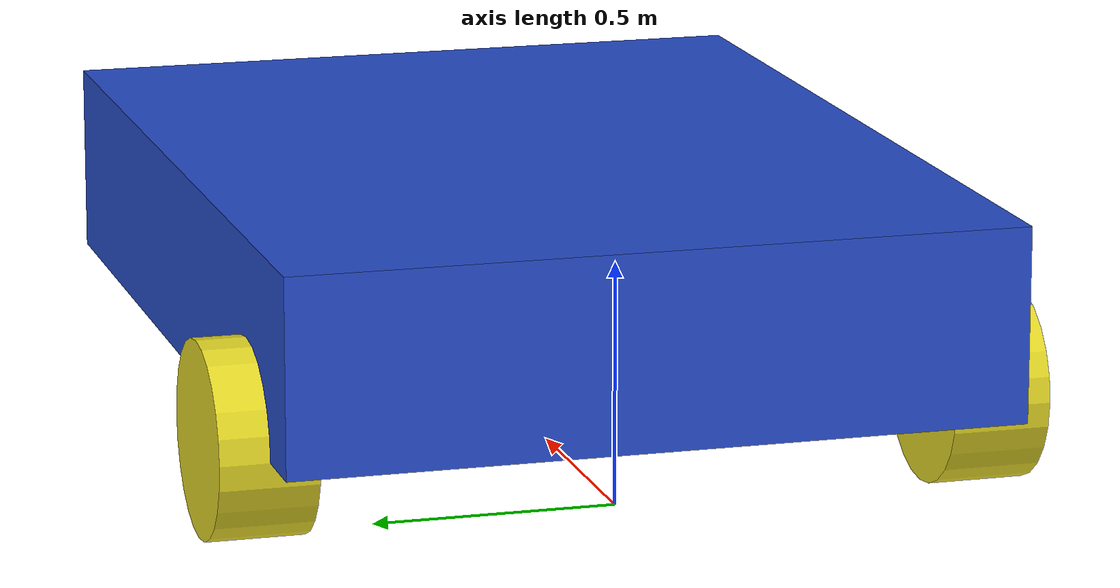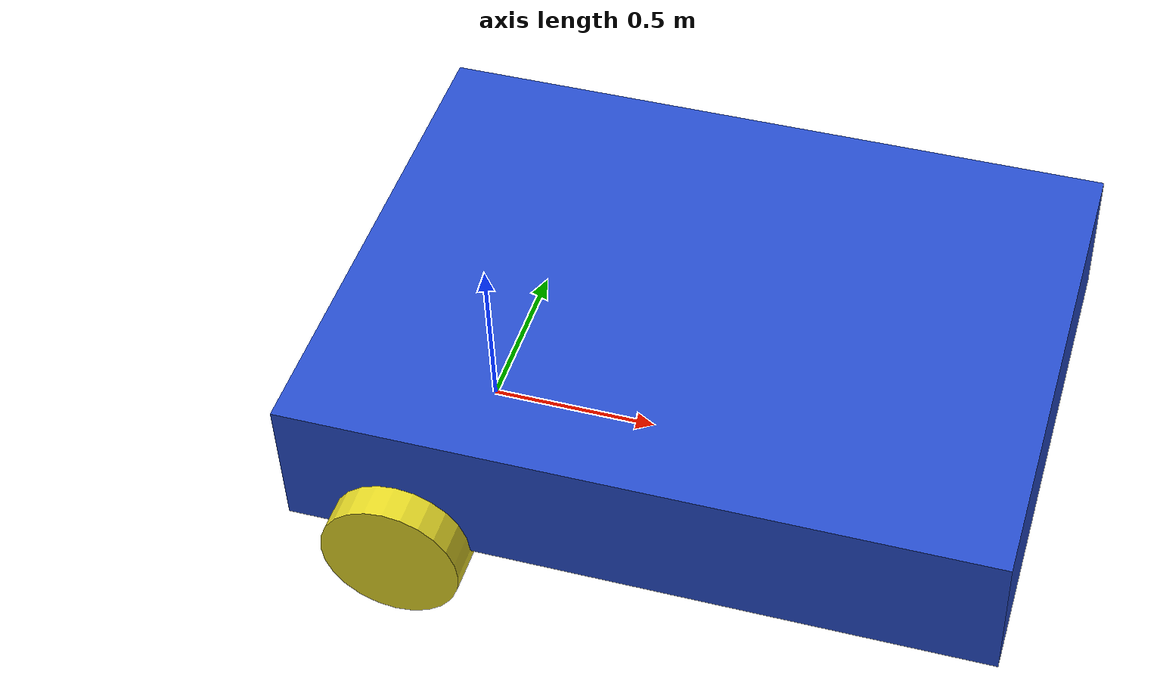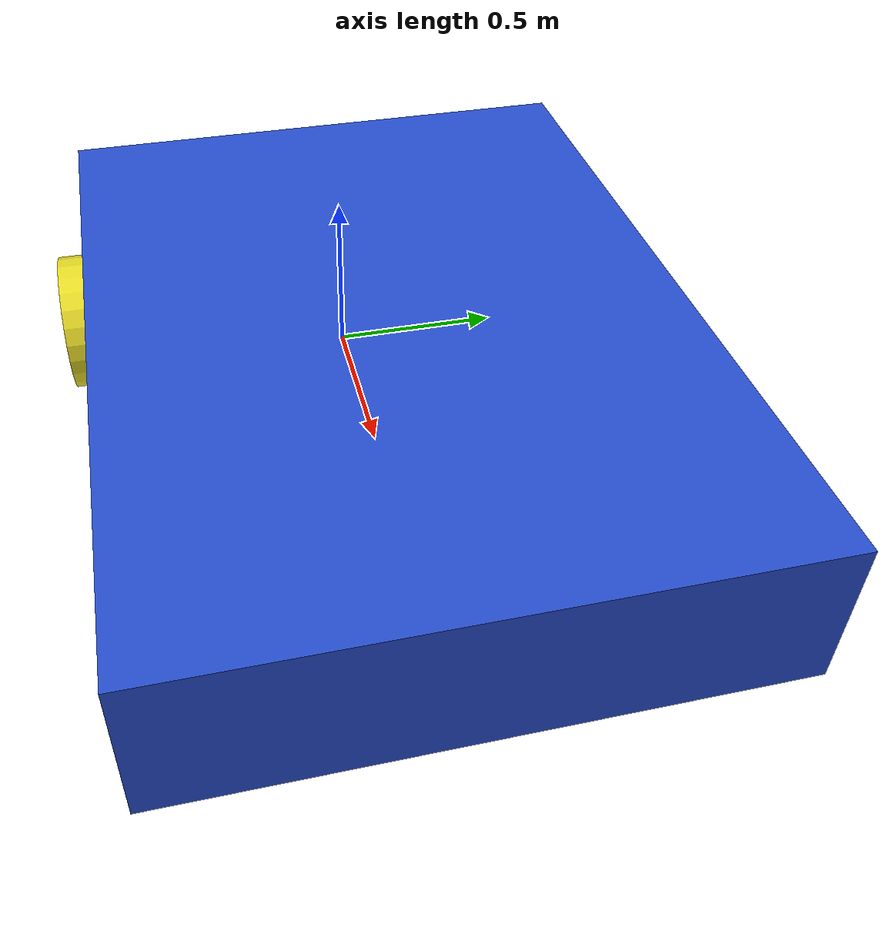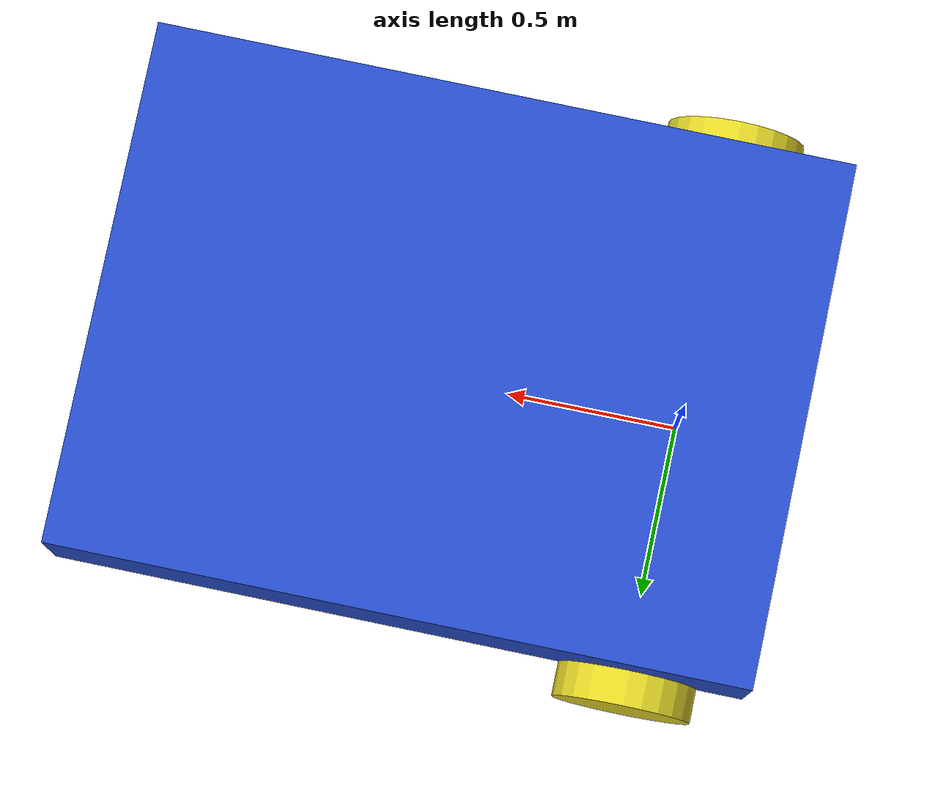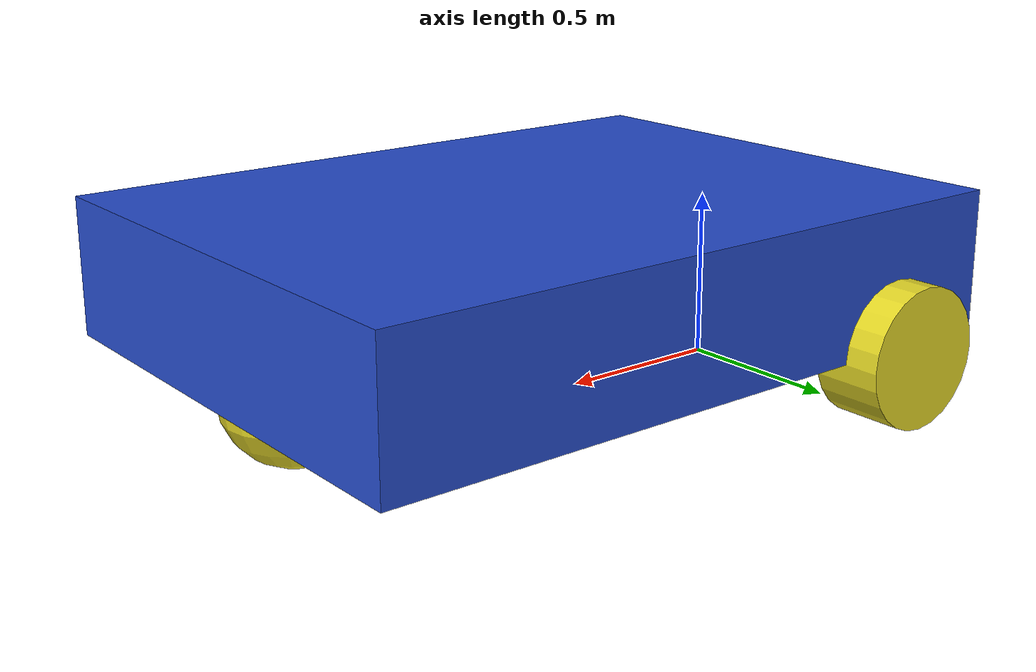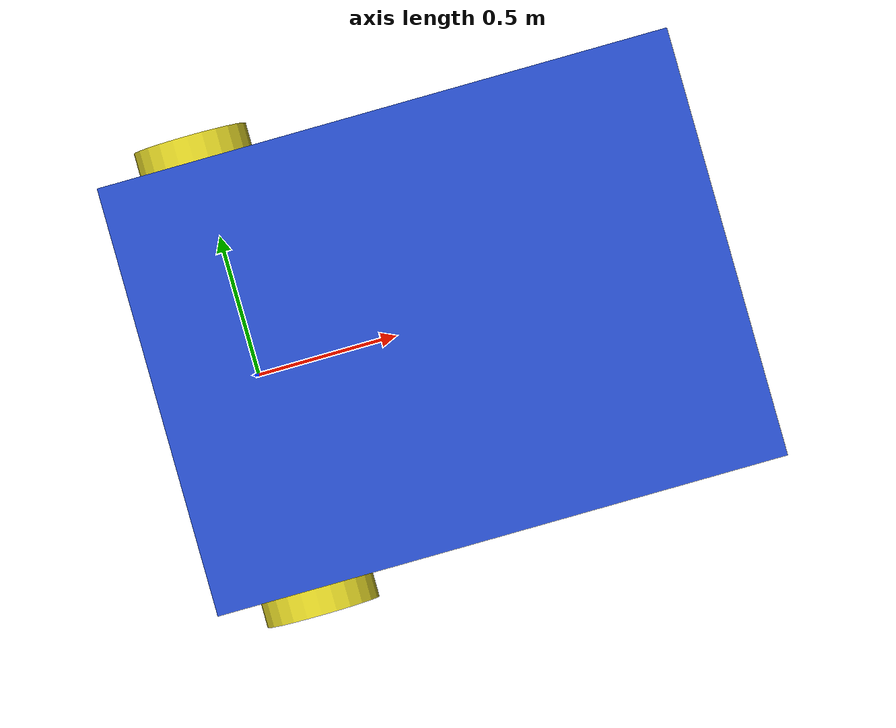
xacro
<?xml version="1.0"?>
<robot xmlns:xacro="http://www.ros.org/wiki/xacro">

  <xacro:property name="base_length" value="2" />
  <xacro:property name="base_width" value="1.5" />
  <xacro:property name="base_height" value="0.4" />
  <xacro:property name="wheel_radius" value="${(base_height * (4/4)) / 2}" />
  <xacro:property name="wheel_length" value="0.2" />

  <link name="base_link">
    <visual>
      <geometry>
        <box size="${base_length} ${base_width} ${base_height}" />
      </geometry>
      <origin xyz="0 0 ${base_height / 2.0}" rpy="0 0 0" />
      <material name="blue" />
    </visual>

    <collision>
      <geometry>
        <box size="${base_length} ${base_width} ${base_height}" />
      </geometry>
      <origin xyz="0 0 ${base_height / 2.0}" rpy="0 0 0" />
    </collision>

    <xacro:box_inertia m="10.0" x="${base_length}" y="${base_width}" z="${base_height}"
                       o_xyz="0 0 ${base_height / 2.0}" o_rpy="0 0 0" />
  </link>

  <xacro:macro name="wheel_link" params="prefix">
    <link name="${prefix}_wheel_link">
      <visual>
        <geometry>
          <cylinder radius="${wheel_radius}" length="${wheel_length}" />
        </geometry>
        <origin xyz="0 0 0" rpy="${pi / 2.0} 0 0" />
        <material name="yellow" />
      </visual>

      <collision>
        <geometry>
          <sphere radius="${wheel_radius}" />
        </geometry>
        <origin xyz="0 0 0" rpy="0 0 0" />
      </collision>

      <xacro:cylinder_inertia m="1.0" r="${wheel_radius}" l="${wheel_length}"
                              o_xyz="0 0 0" o_rpy="${pi / 2.0} 0 0" />
    </link>
  </xacro:macro>

  <xacro:wheel_link prefix="right_back" />
  <xacro:wheel_link prefix="left_back" />

  <link name="base_footprint">
  </link>

  <link name="front_wheel_link">
    <visual>
      <geometry>
        <sphere radius="${wheel_radius}" />
      </geometry>
      <origin xyz="0 0 0" rpy="0 0 0" />
      <material name="yellow" />
    </visual>

    <collision>
      <geometry>
        <sphere radius="${wheel_radius}" />
      </geometry>
      <origin xyz="0 0 0" rpy="0 0 0" />
    </collision>

    <xacro:sphere_inertia m="2" r="${wheel_radius}"
                          o_xyz="0 0 0" o_rpy="0 0 0" />
  </link>

  <joint name="base_front_wheel_joint" type="fixed">
    <parent link="base_link" />
    <child link="front_wheel_link" />
    <origin xyz="${base_length / 2.6} 0 0" rpy="0 0 0" />

  </joint>

  <joint name="base_right_back_wheel_joint" type="continuous">
    <parent link="base_link" />
    <child link="right_back_wheel_link" />
    <origin xyz="${-base_length / 3.0} ${-base_width / 2.0} 0" rpy="0 0 0" />
    <axis xyz="0 1 0" />
  </joint>

  <joint name="base_left_back_wheel_joint" type="continuous">
    <parent link="base_link" />
    <child link="left_back_wheel_link" />
    <origin xyz="${-base_length / 3.0} ${base_width / 2.0} 0" rpy="0 0 0" />
    <axis xyz="0 1 0" />
  </joint>

  <joint name="base_joint" type="fixed">
    <parent link="base_footprint" />
    <child link="base_link" />
    <origin xyz="${base_length / 3.0} 0 ${(base_height * (4/4)) / 2}" rpy="0 0 0" />
    <axis xyz="0 0 0" />
  </joint>

</robot>
